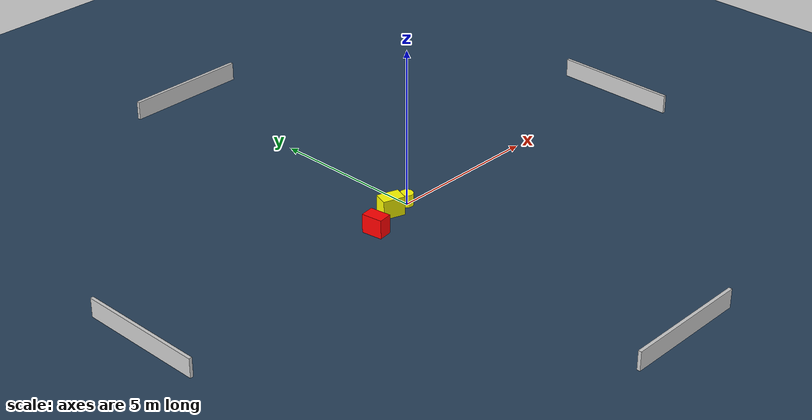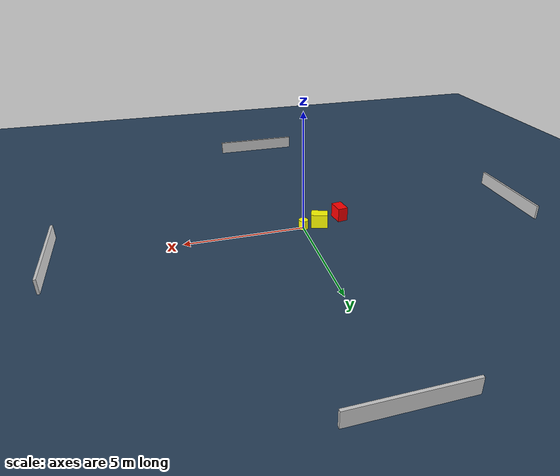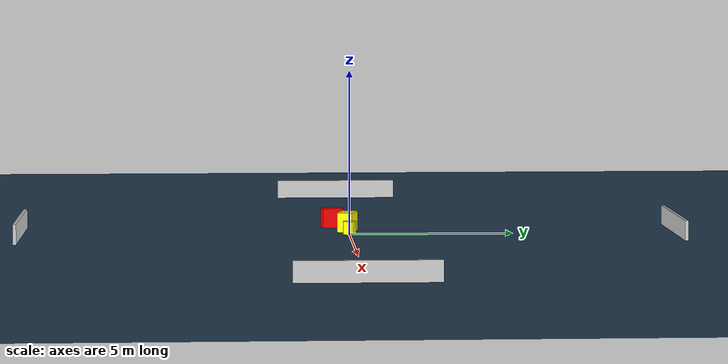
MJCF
<?xml version="1.0" ?>
<mujoco model="generated_environment">
  <option timestep="0.01" integrator="RK4" cone="elliptic"/>
  <default>
    <geom density="1"/>
  </default>
  <asset>
    <texture builtin="gradient" height="3072" name="skybox" rgb1="0.3 0.5 0.7" rgb2="0 0 0" type="skybox" width="512"/>
    <texture builtin="checker" height="300" name="groundplane" rgb1="0.2 0.3 0.4" rgb2="0.1 0.2 0.3" type="2d" width="300"/>
    <material name="groundplane" reflectance="0.2" texrepeat="5 5" texture="groundplane"/>
  </asset>
  <worldbody>
    <light dir="0 0 -1" directional="true" pos="0 0 1.5"/>
    <geom condim="3" friction="0.5 0.005 0.001" material="groundplane" name="floor" pos="0 0 0" size="0 0 0.05" type="plane"/>
    <body name="walls">
      <geom name="wall_1" condim="4" pos="-10.0 0.0 0.3" rgba="0.800000011920929 0.800000011920929 0.800000011920929 1.0" size="0.05 2.0 0.3" type="box"/>
      <geom name="wall_2" condim="4" pos="10.0 0.0 0.3" rgba="0.800000011920929 0.800000011920929 0.800000011920929 1.0" size="0.05 2.0 0.3" type="box"/>
      <geom name="wall_3" condim="4" pos="0.0 -10.0 0.3" rgba="0.800000011920929 0.800000011920929 0.800000011920929 1.0" size="2.0 0.05 0.3" type="box"/>
      <geom name="wall_4" condim="4" pos="0.0 10.0 0.3" rgba="0.800000011920929 0.800000011920929 0.800000011920929 1.0" size="2.0 0.05 0.3" type="box"/>
    </body>
    <body name="robot">
      <joint name="joint_x" type="slide" pos="0 0 0" axis="1 0 0"/>
      <joint name="joint_y" type="slide" pos="0 0 0" axis="0 1 0"/>
      <geom name="robot" type="cylinder" pos="0.0 0.0 0.2" size="0.2 0.2 0.0" mass="5.0" friction="1.0 0.005 0.0001" condim="4" rgba="1.0 1.0 0.0 1.0"/>
    </body>
    <body name="obstacle_1_movable">
      <geom name="obstacle_1_movable" condim="4" pos="-0.7168862881947716 -0.03140877612445635 0.3" euler="0 0 161.36682653081155" friction="0.0 0.005 0.001" rgba="1.0 1.0 0.0 1.0" size="0.3489232590775368 0.23594087637535932 0.3" type="box" mass="0.1"/>
      <joint type="free"/>
    </body>
    <body name="obstacle_2_static">
      <geom name="obstacle_2_static" condim="4" pos="-1.7676351795278769 -0.4581840392730313 0.3" euler="0 0 97.71635052912264" friction="0.0 0.005 0.001" rgba="1.0 0.0 0.0 1.0" size="0.3311916684877779 0.21893419192103875 0.3" type="box"/>
    </body>
  </worldbody>
  <actuator>
    <motor name="actuator_x" joint="joint_x" gear="1" ctrlrange="-1 1"/>
    <motor name="actuator_y" joint="joint_y" gear="1" ctrlrange="-1 1"/>
  </actuator>
</mujoco>
